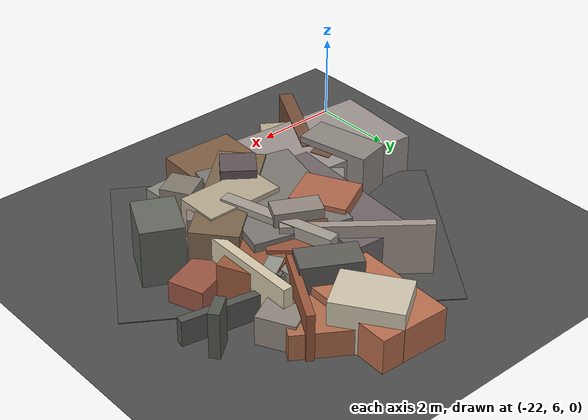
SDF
<sdf version="1.6">
 <world name="navitas_arena">
  <model name="ground_plane">
   <static>true</static>
   <link name="link">
    <collision name="collision">
     <geometry><plane><normal>0 0 1</normal><size>400 400</size></plane></geometry>
     <surface><friction><ode><mu>0.800</mu><mu2>0.800</mu2></ode></friction></surface>
    </collision>
    <visual name="visual">
     <cast_shadows>false</cast_shadows>
     <geometry><plane><normal>0 0 1</normal><size>400 400</size></plane></geometry>
     <material>
      <specular>0.04 0.04 0.04 1</specular>
      <script>
       <uri>file://media/materials/scripts/navitas_asphalt.material</uri>
       <name>Navitas/RealArenaAsphalt</name>
      </script>
     </material>
    </visual>
   </link>
  </model>
  <model name="road_orta_1_14">
   <static>true</static>
   <pose>-16.132 8.732 0.040 0 0 2.567</pose>
   <link name="link">
    <collision name="col"><geometry><box><size>4.297 5.000 0.020</size></box></geometry></collision>
    <visual name="vis">
     <geometry><box><size>4.297 5.000 0.020</size></box></geometry>
     <material>
      <specular>0.04 0.04 0.04 1</specular>
      <script>
       <uri>file://media/materials/scripts/navitas_asphalt.material</uri>
       <name>Navitas/RealArenaAsphalt</name>
      </script>
     </material>
    </visual>
   </link>
  </model>
  <model name="road_orta_1_15">
   <static>true</static>
   <pose>-18.769 10.541 0.040 0 0 2.511</pose>
   <link name="link">
    <collision name="col"><geometry><box><size>3.900 5.000 0.020</size></box></geometry></collision>
    <visual name="vis">
     <geometry><box><size>3.900 5.000 0.020</size></box></geometry>
     <material>
      <specular>0.04 0.04 0.04 1</specular>
      <script>
       <uri>file://media/materials/scripts/navitas_asphalt.material</uri>
       <name>Navitas/RealArenaAsphalt</name>
      </script>
     </material>
    </visual>
   </link>
  </model>
  <model name="blk_orta_1_1_0">
   <static>true</static>
   <pose>-16.534 12.122 0.000 0 0 0</pose>
   <link name="link">
    <collision name="col_0">
     <pose>-0.680 -1.198 0.610 0.000 0.000 2.571</pose>
     <geometry><box><size>0.454 0.359 1.220</size></box></geometry>
    </collision>
    <visual name="vis_0">
     <pose>-0.680 -1.198 0.610 0.000 0.000 2.571</pose>
     <geometry><box><size>0.454 0.359 1.220</size></box></geometry>
     <material>
      <ambient>0.40 0.25 0.18 1</ambient>
      <diffuse>0.43 0.27 0.19 1</diffuse>
      <specular>0.05 0.05 0.045 1</specular>
     </material>
    </visual>
    <collision name="col_1">
     <pose>-0.047 -0.172 0.639 0.000 0.000 2.626</pose>
     <geometry><box><size>1.354 0.720 1.279</size></box></geometry>
    </collision>
    <visual name="vis_1">
     <pose>-0.047 -0.172 0.639 0.000 0.000 2.626</pose>
     <geometry><box><size>1.354 0.720 1.279</size></box></geometry>
     <material>
      <ambient>0.35 0.34 0.33 1</ambient>
      <diffuse>0.38 0.37 0.35 1</diffuse>
      <specular>0.05 0.05 0.045 1</specular>
     </material>
    </visual>
    <collision name="col_2">
     <pose>0.499 0.611 0.307 0.000 0.000 2.571</pose>
     <geometry><box><size>2.059 1.308 0.614</size></box></geometry>
    </collision>
    <visual name="vis_2">
     <pose>0.499 0.611 0.307 0.000 0.000 2.571</pose>
     <geometry><box><size>2.059 1.308 0.614</size></box></geometry>
     <material>
      <ambient>0.65 0.40 0.28 1</ambient>
      <diffuse>0.70 0.43 0.30 1</diffuse>
      <specular>0.05 0.05 0.045 1</specular>
     </material>
    </visual>
    <collision name="col_3">
     <pose>0.034 1.158 0.587 0.000 0.000 2.158</pose>
     <geometry><box><size>1.548 1.137 1.173</size></box></geometry>
    </collision>
    <visual name="vis_3">
     <pose>0.034 1.158 0.587 0.000 0.000 2.158</pose>
     <geometry><box><size>1.548 1.137 1.173</size></box></geometry>
     <material>
      <ambient>0.75 0.71 0.63 1</ambient>
      <diffuse>0.81 0.77 0.68 1</diffuse>
      <specular>0.05 0.05 0.045 1</specular>
     </material>
    </visual>
    <collision name="col_4">
     <pose>-0.240 0.482 0.402 0.000 0.000 2.040</pose>
     <geometry><box><size>0.733 0.603 0.804</size></box></geometry>
    </collision>
    <visual name="vis_4">
     <pose>-0.240 0.482 0.402 0.000 0.000 2.040</pose>
     <geometry><box><size>0.733 0.603 0.804</size></box></geometry>
     <material>
      <ambient>0.67 0.61 0.53 1</ambient>
      <diffuse>0.73 0.66 0.58 1</diffuse>
      <specular>0.05 0.05 0.045 1</specular>
     </material>
    </visual>
    <collision name="col_5">
     <pose>0.886 0.017 0.561 0.000 0.000 1.045</pose>
     <geometry><box><size>2.030 0.178 1.121</size></box></geometry>
    </collision>
    <visual name="vis_5">
     <pose>0.886 0.017 0.561 0.000 0.000 1.045</pose>
     <geometry><box><size>2.030 0.178 1.121</size></box></geometry>
     <material>
      <ambient>0.56 0.32 0.22 1</ambient>
      <diffuse>0.61 0.35 0.23 1</diffuse>
      <specular>0.05 0.05 0.045 1</specular>
     </material>
    </visual>
   </link>
  </model>
  <model name="blk_orta_1_1_1">
   <static>true</static>
   <pose>-16.061 9.048 0.000 0 0 0</pose>
   <link name="link">
    <collision name="col_0">
     <pose>-1.242 0.313 0.570 0.000 0.000 1.308</pose>
     <geometry><box><size>3.108 2.279 1.141</size></box></geometry>
    </collision>
    <visual name="vis_0">
     <pose>-1.242 0.313 0.570 0.000 0.000 1.308</pose>
     <geometry><box><size>3.108 2.279 1.141</size></box></geometry>
     <material>
      <ambient>0.45 0.44 0.42 1</ambient>
      <diffuse>0.49 0.47 0.45 1</diffuse>
      <specular>0.05 0.05 0.045 1</specular>
     </material>
    </visual>
    <collision name="col_1">
     <pose>-0.477 1.274 0.469 0.000 0.000 0.425</pose>
     <geometry><box><size>2.928 1.233 0.938</size></box></geometry>
    </collision>
    <visual name="vis_1">
     <pose>-0.477 1.274 0.469 0.000 0.000 0.425</pose>
     <geometry><box><size>2.928 1.233 0.938</size></box></geometry>
     <material>
      <ambient>0.55 0.33 0.21 1</ambient>
      <diffuse>0.60 0.35 0.23 1</diffuse>
      <specular>0.05 0.05 0.045 1</specular>
     </material>
    </visual>
    <collision name="col_2">
     <pose>0.080 -1.172 0.625 0.000 0.000 0.523</pose>
     <geometry><box><size>0.718 0.725 1.251</size></box></geometry>
    </collision>
    <visual name="vis_2">
     <pose>0.080 -1.172 0.625 0.000 0.000 0.523</pose>
     <geometry><box><size>0.718 0.725 1.251</size></box></geometry>
     <material>
      <ambient>0.47 0.44 0.40 1</ambient>
      <diffuse>0.51 0.48 0.43 1</diffuse>
      <specular>0.05 0.05 0.045 1</specular>
     </material>
    </visual>
    <collision name="col_3">
     <pose>1.322 -0.349 0.706 0.000 0.000 1.107</pose>
     <geometry><box><size>1.223 0.964 1.412</size></box></geometry>
    </collision>
    <visual name="vis_3">
     <pose>1.322 -0.349 0.706 0.000 0.000 1.107</pose>
     <geometry><box><size>1.223 0.964 1.412</size></box></geometry>
     <material>
      <ambient>0.37 0.38 0.35 1</ambient>
      <diffuse>0.40 0.41 0.38 1</diffuse>
      <specular>0.05 0.05 0.045 1</specular>
     </material>
    </visual>
    <collision name="col_4">
     <pose>-0.417 0.343 0.285 0.000 0.000 0.339</pose>
     <geometry><box><size>4.621 0.832 0.570</size></box></geometry>
    </collision>
    <visual name="vis_4">
     <pose>-0.417 0.343 0.285 0.000 0.000 0.339</pose>
     <geometry><box><size>4.621 0.832 0.570</size></box></geometry>
     <material>
      <ambient>0.57 0.32 0.24 1</ambient>
      <diffuse>0.61 0.34 0.26 1</diffuse>
      <specular>0.05 0.05 0.045 1</specular>
     </material>
    </visual>
    <collision name="col_5">
     <pose>-0.054 0.160 0.413 0.000 0.000 1.607</pose>
     <geometry><box><size>4.444 0.752 0.827</size></box></geometry>
    </collision>
    <visual name="vis_5">
     <pose>-0.054 0.160 0.413 0.000 0.000 1.607</pose>
     <geometry><box><size>4.444 0.752 0.827</size></box></geometry>
     <material>
      <ambient>0.49 0.50 0.46 1</ambient>
      <diffuse>0.53 0.54 0.50 1</diffuse>
      <specular>0.05 0.05 0.045 1</specular>
     </material>
    </visual>
    <collision name="col_6">
     <pose>-0.669 0.938 0.492 0.000 0.000 -0.207</pose>
     <geometry><box><size>2.193 0.186 0.984</size></box></geometry>
    </collision>
    <visual name="vis_6">
     <pose>-0.669 0.938 0.492 0.000 0.000 -0.207</pose>
     <geometry><box><size>2.193 0.186 0.984</size></box></geometry>
     <material>
      <ambient>0.33 0.32 0.29 1</ambient>
      <diffuse>0.36 0.34 0.31 1</diffuse>
      <specular>0.05 0.05 0.045 1</specular>
     </material>
    </visual>
    <collision name="col_7">
     <pose>-1.202 -0.789 0.730 0.000 0.000 -0.643</pose>
     <geometry><box><size>0.808 0.745 1.460</size></box></geometry>
    </collision>
    <visual name="vis_7">
     <pose>-1.202 -0.789 0.730 0.000 0.000 -0.643</pose>
     <geometry><box><size>0.808 0.745 1.460</size></box></geometry>
     <material>
      <ambient>0.35 0.30 0.32 1</ambient>
      <diffuse>0.38 0.33 0.35 1</diffuse>
      <specular>0.05 0.05 0.045 1</specular>
     </material>
    </visual>
   </link>
  </model>
  <model name="blk_orta_1_1_2">
   <static>true</static>
   <pose>-17.335 10.587 0.000 0 0 0</pose>
   <link name="link">
    <collision name="col_0">
     <pose>1.144 -0.034 0.440 0.000 0.000 0.456</pose>
     <geometry><box><size>1.585 1.191 0.879</size></box></geometry>
    </collision>
    <visual name="vis_0">
     <pose>1.144 -0.034 0.440 0.000 0.000 0.456</pose>
     <geometry><box><size>1.585 1.191 0.879</size></box></geometry>
     <material>
      <ambient>0.42 0.41 0.37 1</ambient>
      <diffuse>0.45 0.44 0.40 1</diffuse>
      <specular>0.05 0.05 0.045 1</specular>
     </material>
    </visual>
    <collision name="col_1">
     <pose>-0.033 -0.029 0.393 0.000 0.000 1.138</pose>
     <geometry><box><size>0.382 0.355 0.786</size></box></geometry>
    </collision>
    <visual name="vis_1">
     <pose>-0.033 -0.029 0.393 0.000 0.000 1.138</pose>
     <geometry><box><size>0.382 0.355 0.786</size></box></geometry>
     <material>
      <ambient>0.51 0.49 0.44 1</ambient>
      <diffuse>0.55 0.53 0.48 1</diffuse>
      <specular>0.05 0.05 0.045 1</specular>
     </material>
    </visual>
    <collision name="col_2">
     <pose>0.242 -0.666 0.548 0.000 0.000 -0.011</pose>
     <geometry><box><size>1.522 0.824 1.096</size></box></geometry>
    </collision>
    <visual name="vis_2">
     <pose>0.242 -0.666 0.548 0.000 0.000 -0.011</pose>
     <geometry><box><size>1.522 0.824 1.096</size></box></geometry>
     <material>
      <ambient>0.34 0.31 0.31 1</ambient>
      <diffuse>0.37 0.33 0.34 1</diffuse>
      <specular>0.05 0.05 0.045 1</specular>
     </material>
    </visual>
    <collision name="col_3">
     <pose>0.640 -0.323 0.654 0.000 0.000 -1.306</pose>
     <geometry><box><size>2.776 0.298 1.308</size></box></geometry>
    </collision>
    <visual name="vis_3">
     <pose>0.640 -0.323 0.654 0.000 0.000 -1.306</pose>
     <geometry><box><size>2.776 0.298 1.308</size></box></geometry>
     <material>
      <ambient>0.60 0.57 0.54 1</ambient>
      <diffuse>0.65 0.62 0.58 1</diffuse>
      <specular>0.05 0.05 0.045 1</specular>
     </material>
    </visual>
    <collision name="col_4">
     <pose>-0.437 0.951 0.645 0.000 0.000 -0.679</pose>
     <geometry><box><size>3.257 0.201 1.291</size></box></geometry>
    </collision>
    <visual name="vis_4">
     <pose>-0.437 0.951 0.645 0.000 0.000 -0.679</pose>
     <geometry><box><size>3.257 0.201 1.291</size></box></geometry>
     <material>
      <ambient>0.59 0.54 0.52 1</ambient>
      <diffuse>0.64 0.59 0.56 1</diffuse>
      <specular>0.05 0.05 0.045 1</specular>
     </material>
    </visual>
    <collision name="col_5">
     <pose>-0.812 -0.436 0.629 0.000 0.000 -1.096</pose>
     <geometry><box><size>1.301 1.095 1.257</size></box></geometry>
    </collision>
    <visual name="vis_5">
     <pose>-0.812 -0.436 0.629 0.000 0.000 -1.096</pose>
     <geometry><box><size>1.301 1.095 1.257</size></box></geometry>
     <material>
      <ambient>0.64 0.38 0.28 1</ambient>
      <diffuse>0.69 0.41 0.30 1</diffuse>
      <specular>0.05 0.05 0.045 1</specular>
     </material>
    </visual>
    <collision name="col_6">
     <pose>-0.162 -0.912 0.366 0.000 0.000 -1.191</pose>
     <geometry><box><size>0.570 0.460 0.731</size></box></geometry>
    </collision>
    <visual name="vis_6">
     <pose>-0.162 -0.912 0.366 0.000 0.000 -1.191</pose>
     <geometry><box><size>0.570 0.460 0.731</size></box></geometry>
     <material>
      <ambient>0.44 0.30 0.22 1</ambient>
      <diffuse>0.47 0.32 0.24 1</diffuse>
      <specular>0.05 0.05 0.045 1</specular>
     </material>
    </visual>
    <collision name="col_7">
     <pose>0.705 -0.895 0.570 0.000 0.000 -0.631</pose>
     <geometry><box><size>3.022 0.396 1.140</size></box></geometry>
    </collision>
    <visual name="vis_7">
     <pose>0.705 -0.895 0.570 0.000 0.000 -0.631</pose>
     <geometry><box><size>3.022 0.396 1.140</size></box></geometry>
     <material>
      <ambient>0.50 0.45 0.43 1</ambient>
      <diffuse>0.54 0.49 0.47 1</diffuse>
      <specular>0.05 0.05 0.045 1</specular>
     </material>
    </visual>
    <collision name="col_8">
     <pose>0.200 -0.271 0.509 0.000 0.000 0.882</pose>
     <geometry><box><size>2.152 1.277 1.019</size></box></geometry>
    </collision>
    <visual name="vis_8">
     <pose>0.200 -0.271 0.509 0.000 0.000 0.882</pose>
     <geometry><box><size>2.152 1.277 1.019</size></box></geometry>
     <material>
      <ambient>0.56 0.31 0.22 1</ambient>
      <diffuse>0.60 0.34 0.24 1</diffuse>
      <specular>0.05 0.05 0.045 1</specular>
     </material>
    </visual>
   </link>
  </model>
  <model name="blk_orta_1_1_5">
   <static>true</static>
   <pose>-19.571 8.466 0.000 0 0 0</pose>
   <link name="link">
    <collision name="col_0">
     <pose>0.035 0.083 0.479 0.000 0.000 0.311</pose>
     <geometry><box><size>0.331 0.485 0.957</size></box></geometry>
    </collision>
    <visual name="vis_0">
     <pose>0.035 0.083 0.479 0.000 0.000 0.311</pose>
     <geometry><box><size>0.331 0.485 0.957</size></box></geometry>
     <material>
      <ambient>0.41 0.30 0.23 1</ambient>
      <diffuse>0.45 0.32 0.25 1</diffuse>
      <specular>0.05 0.05 0.045 1</specular>
     </material>
    </visual>
    <collision name="col_1">
     <pose>-0.210 -1.322 0.386 0.000 0.000 -0.594</pose>
     <geometry><box><size>1.374 0.896 0.772</size></box></geometry>
    </collision>
    <visual name="vis_1">
     <pose>-0.210 -1.322 0.386 0.000 0.000 -0.594</pose>
     <geometry><box><size>1.374 0.896 0.772</size></box></geometry>
     <material>
      <ambient>0.67 0.62 0.53 1</ambient>
      <diffuse>0.72 0.67 0.57 1</diffuse>
      <specular>0.05 0.05 0.045 1</specular>
     </material>
    </visual>
    <collision name="col_2">
     <pose>-0.450 0.204 0.559 0.000 0.000 1.784</pose>
     <geometry><box><size>1.762 0.841 1.118</size></box></geometry>
    </collision>
    <visual name="vis_2">
     <pose>-0.450 0.204 0.559 0.000 0.000 1.784</pose>
     <geometry><box><size>1.762 0.841 1.118</size></box></geometry>
     <material>
      <ambient>0.52 0.49 0.47 1</ambient>
      <diffuse>0.56 0.53 0.51 1</diffuse>
      <specular>0.05 0.05 0.045 1</specular>
     </material>
    </visual>
    <collision name="col_3">
     <pose>0.668 0.948 0.460 0.000 0.000 0.828</pose>
     <geometry><box><size>0.866 0.726 0.920</size></box></geometry>
    </collision>
    <visual name="vis_3">
     <pose>0.668 0.948 0.460 0.000 0.000 0.828</pose>
     <geometry><box><size>0.866 0.726 0.920</size></box></geometry>
     <material>
      <ambient>0.51 0.50 0.47 1</ambient>
      <diffuse>0.55 0.54 0.51 1</diffuse>
      <specular>0.05 0.05 0.045 1</specular>
     </material>
    </visual>
    <collision name="col_4">
     <pose>-0.500 -1.413 0.482 0.000 0.000 1.072</pose>
     <geometry><box><size>2.519 0.332 0.964</size></box></geometry>
    </collision>
    <visual name="vis_4">
     <pose>-0.500 -1.413 0.482 0.000 0.000 1.072</pose>
     <geometry><box><size>2.519 0.332 0.964</size></box></geometry>
     <material>
      <ambient>0.42 0.28 0.21 1</ambient>
      <diffuse>0.46 0.31 0.22 1</diffuse>
      <specular>0.05 0.05 0.045 1</specular>
     </material>
    </visual>
    <collision name="col_5">
     <pose>-0.025 -1.418 0.377 0.000 0.000 1.446</pose>
     <geometry><box><size>0.498 0.540 0.753</size></box></geometry>
    </collision>
    <visual name="vis_5">
     <pose>-0.025 -1.418 0.377 0.000 0.000 1.446</pose>
     <geometry><box><size>0.498 0.540 0.753</size></box></geometry>
     <material>
      <ambient>0.58 0.58 0.53 1</ambient>
      <diffuse>0.62 0.63 0.57 1</diffuse>
      <specular>0.05 0.05 0.045 1</specular>
     </material>
    </visual>
    <collision name="col_6">
     <pose>0.193 -0.413 0.472 0.000 0.000 -0.089</pose>
     <geometry><box><size>4.531 2.201 0.945</size></box></geometry>
    </collision>
    <visual name="vis_6">
     <pose>0.193 -0.413 0.472 0.000 0.000 -0.089</pose>
     <geometry><box><size>4.531 2.201 0.945</size></box></geometry>
     <material>
      <ambient>0.56 0.54 0.51 1</ambient>
      <diffuse>0.61 0.58 0.56 1</diffuse>
      <specular>0.05 0.05 0.045 1</specular>
     </material>
    </visual>
   </link>
  </model>
  <model name="blk_orta_1_1_6">
   <static>true</static>
   <pose>-17.063 9.917 0.000 0 0 0</pose>
   <link name="link">
    <collision name="col_0">
     <pose>0.518 -1.041 0.629 0.000 0.000 0.000</pose>
     <geometry><box><size>1.881 1.032 1.259</size></box></geometry>
    </collision>
    <visual name="vis_0">
     <pose>0.518 -1.041 0.629 0.000 0.000 0.000</pose>
     <geometry><box><size>1.881 1.032 1.259</size></box></geometry>
     <material>
      <ambient>0.66 0.62 0.53 1</ambient>
      <diffuse>0.72 0.67 0.57 1</diffuse>
      <specular>0.05 0.05 0.045 1</specular>
     </material>
    </visual>
    <collision name="col_1">
     <pose>-1.206 0.205 0.498 0.000 0.000 1.489</pose>
     <geometry><box><size>3.673 1.561 0.996</size></box></geometry>
    </collision>
    <visual name="vis_1">
     <pose>-1.206 0.205 0.498 0.000 0.000 1.489</pose>
     <geometry><box><size>3.673 1.561 0.996</size></box></geometry>
     <material>
      <ambient>0.41 0.37 0.38 1</ambient>
      <diffuse>0.44 0.40 0.41 1</diffuse>
      <specular>0.05 0.05 0.045 1</specular>
     </material>
    </visual>
    <collision name="col_2">
     <pose>0.469 -0.997 0.437 0.000 0.000 1.218</pose>
     <geometry><box><size>0.644 0.584 0.873</size></box></geometry>
    </collision>
    <visual name="vis_2">
     <pose>0.469 -0.997 0.437 0.000 0.000 1.218</pose>
     <geometry><box><size>0.644 0.584 0.873</size></box></geometry>
     <material>
      <ambient>0.59 0.53 0.52 1</ambient>
      <diffuse>0.64 0.58 0.56 1</diffuse>
      <specular>0.05 0.05 0.045 1</specular>
     </material>
    </visual>
    <collision name="col_3">
     <pose>-0.037 0.464 0.732 0.000 0.000 -0.479</pose>
     <geometry><box><size>1.083 0.540 1.463</size></box></geometry>
    </collision>
    <visual name="vis_3">
     <pose>-0.037 0.464 0.732 0.000 0.000 -0.479</pose>
     <geometry><box><size>1.083 0.540 1.463</size></box></geometry>
     <material>
      <ambient>0.54 0.50 0.47 1</ambient>
      <diffuse>0.58 0.54 0.51 1</diffuse>
      <specular>0.05 0.05 0.045 1</specular>
     </material>
    </visual>
    <collision name="col_4">
     <pose>0.482 -1.158 0.607 0.000 0.000 0.699</pose>
     <geometry><box><size>3.284 1.090 1.214</size></box></geometry>
    </collision>
    <visual name="vis_4">
     <pose>0.482 -1.158 0.607 0.000 0.000 0.699</pose>
     <geometry><box><size>3.284 1.090 1.214</size></box></geometry>
     <material>
      <ambient>0.45 0.37 0.28 1</ambient>
      <diffuse>0.49 0.40 0.30 1</diffuse>
      <specular>0.05 0.05 0.045 1</specular>
     </material>
    </visual>
    <collision name="col_5">
     <pose>-0.313 -1.214 0.492 0.000 0.000 1.526</pose>
     <geometry><box><size>4.450 1.720 0.983</size></box></geometry>
    </collision>
    <visual name="vis_5">
     <pose>-0.313 -1.214 0.492 0.000 0.000 1.526</pose>
     <geometry><box><size>4.450 1.720 0.983</size></box></geometry>
     <material>
      <ambient>0.47 0.34 0.25 1</ambient>
      <diffuse>0.51 0.37 0.27 1</diffuse>
      <specular>0.05 0.05 0.045 1</specular>
     </material>
    </visual>
   </link>
  </model>
  <model name="blk_orta_1_1_7">
   <static>true</static>
   <pose>-15.586 11.807 0.000 0 0 0</pose>
   <link name="link">
    <collision name="col_0">
     <pose>-1.235 0.817 0.404 0.000 0.000 1.525</pose>
     <geometry><box><size>3.249 1.653 0.808</size></box></geometry>
    </collision>
    <visual name="vis_0">
     <pose>-1.235 0.817 0.404 0.000 0.000 1.525</pose>
     <geometry><box><size>3.249 1.653 0.808</size></box></geometry>
     <material>
      <ambient>0.68 0.41 0.29 1</ambient>
      <diffuse>0.73 0.44 0.31 1</diffuse>
      <specular>0.05 0.05 0.045 1</specular>
     </material>
    </visual>
    <collision name="col_1">
     <pose>0.425 0.336 0.341 0.000 0.000 0.471</pose>
     <geometry><box><size>0.687 0.876 0.683</size></box></geometry>
    </collision>
    <visual name="vis_1">
     <pose>0.425 0.336 0.341 0.000 0.000 0.471</pose>
     <geometry><box><size>0.687 0.876 0.683</size></box></geometry>
     <material>
      <ambient>0.53 0.50 0.47 1</ambient>
      <diffuse>0.57 0.53 0.50 1</diffuse>
      <specular>0.05 0.05 0.045 1</specular>
     </material>
    </visual>
    <collision name="col_2">
     <pose>-0.224 -1.318 0.284 0.000 0.000 1.916</pose>
     <geometry><box><size>0.708 0.322 0.568</size></box></geometry>
    </collision>
    <visual name="vis_2">
     <pose>-0.224 -1.318 0.284 0.000 0.000 1.916</pose>
     <geometry><box><size>0.708 0.322 0.568</size></box></geometry>
     <material>
      <ambient>0.59 0.56 0.51 1</ambient>
      <diffuse>0.64 0.61 0.55 1</diffuse>
      <specular>0.05 0.05 0.045 1</specular>
     </material>
    </visual>
    <collision name="col_3">
     <pose>0.197 -1.008 0.566 0.000 0.000 1.551</pose>
     <geometry><box><size>2.615 0.225 1.131</size></box></geometry>
    </collision>
    <visual name="vis_3">
     <pose>0.197 -1.008 0.566 0.000 0.000 1.551</pose>
     <geometry><box><size>2.615 0.225 1.131</size></box></geometry>
     <material>
      <ambient>0.77 0.73 0.62 1</ambient>
      <diffuse>0.83 0.79 0.67 1</diffuse>
      <specular>0.05 0.05 0.045 1</specular>
     </material>
    </visual>
    <collision name="col_4">
     <pose>0.578 -0.579 0.303 0.000 0.000 -0.193</pose>
     <geometry><box><size>2.975 0.198 0.606</size></box></geometry>
    </collision>
    <visual name="vis_4">
     <pose>0.578 -0.579 0.303 0.000 0.000 -0.193</pose>
     <geometry><box><size>2.975 0.198 0.606</size></box></geometry>
     <material>
      <ambient>0.30 0.32 0.30 1</ambient>
      <diffuse>0.33 0.34 0.32 1</diffuse>
      <specular>0.05 0.05 0.045 1</specular>
     </material>
    </visual>
    <collision name="col_5">
     <pose>-0.495 -0.392 0.448 0.000 0.000 1.623</pose>
     <geometry><box><size>0.617 0.417 0.896</size></box></geometry>
    </collision>
    <visual name="vis_5">
     <pose>-0.495 -0.392 0.448 0.000 0.000 1.623</pose>
     <geometry><box><size>0.617 0.417 0.896</size></box></geometry>
     <material>
      <ambient>0.52 0.50 0.46 1</ambient>
      <diffuse>0.56 0.54 0.50 1</diffuse>
      <specular>0.05 0.05 0.045 1</specular>
     </material>
    </visual>
    <collision name="col_6">
     <pose>-0.026 -1.345 0.453 0.000 0.000 0.236</pose>
     <geometry><box><size>0.681 0.269 0.906</size></box></geometry>
    </collision>
    <visual name="vis_6">
     <pose>-0.026 -1.345 0.453 0.000 0.000 0.236</pose>
     <geometry><box><size>0.681 0.269 0.906</size></box></geometry>
     <material>
      <ambient>0.50 0.50 0.42 1</ambient>
      <diffuse>0.54 0.54 0.46 1</diffuse>
      <specular>0.05 0.05 0.045 1</specular>
     </material>
    </visual>
    <collision name="col_7">
     <pose>1.567 -0.247 0.545 0.000 0.000 0.661</pose>
     <geometry><box><size>0.583 0.241 1.089</size></box></geometry>
    </collision>
    <visual name="vis_7">
     <pose>1.567 -0.247 0.545 0.000 0.000 0.661</pose>
     <geometry><box><size>0.583 0.241 1.089</size></box></geometry>
     <material>
      <ambient>0.31 0.33 0.29 1</ambient>
      <diffuse>0.33 0.35 0.31 1</diffuse>
      <specular>0.05 0.05 0.045 1</specular>
     </material>
    </visual>
    <collision name="col_8">
     <pose>-0.213 -0.676 0.486 0.000 0.000 0.558</pose>
     <geometry><box><size>0.563 0.337 0.973</size></box></geometry>
    </collision>
    <visual name="vis_8">
     <pose>-0.213 -0.676 0.486 0.000 0.000 0.558</pose>
     <geometry><box><size>0.563 0.337 0.973</size></box></geometry>
     <material>
      <ambient>0.54 0.55 0.51 1</ambient>
      <diffuse>0.58 0.59 0.55 1</diffuse>
      <specular>0.05 0.05 0.045 1</specular>
     </material>
    </visual>
   </link>
  </model>
 </world>
</sdf>
